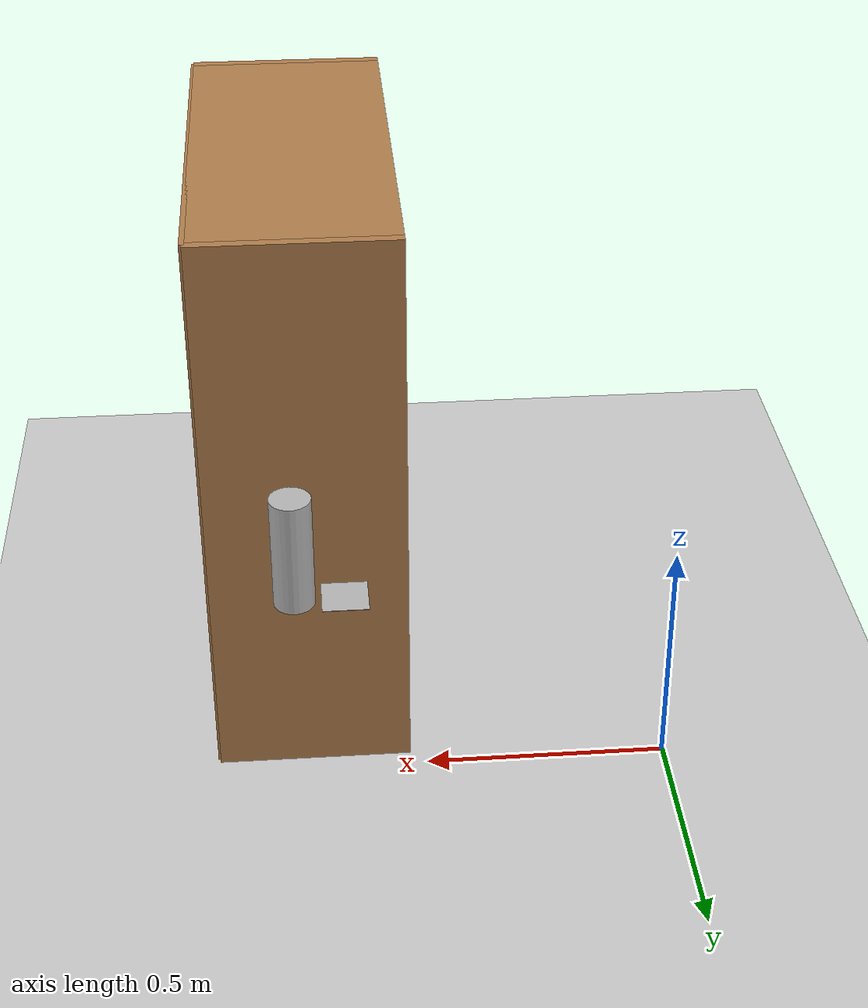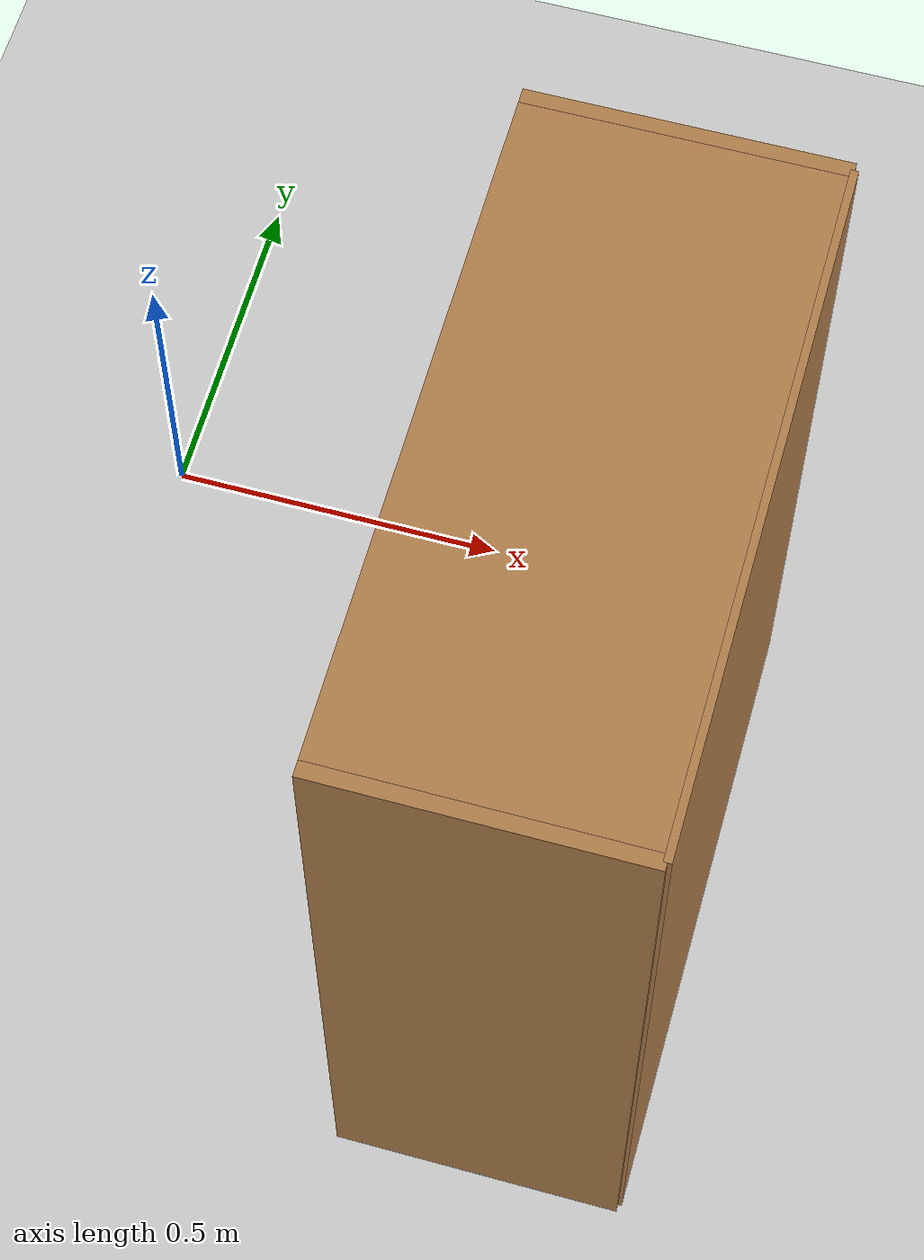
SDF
<sdf version="1.6">
 <world name="default">
  <physics name="default_physics" default="0" type="ode">
   <ode>
    <solver>
     <type>quick</type>
     <iters>20</iters>
     <sor>1</sor>
     <use_dynamic_moi_rescaling>0</use_dynamic_moi_rescaling>
    </solver>
    <constraints>
     <cfm>0</cfm>
     <erp>0.2</erp>
     <contact_max_correcting_vel>100</contact_max_correcting_vel>
     <contact_surface_layer>0</contact_surface_layer>
    </constraints>
   </ode>
   <real_time_update_rate>1000</real_time_update_rate>
   <max_step_size>0.001</max_step_size>
   <real_time_factor>1</real_time_factor>
  </physics>
  <light name="sun" type="directional">
   <pose>0 0 10 0 -0 0</pose>
   <diffuse>0.8 0.8 0.8 1</diffuse>
   <specular>0.2 0.2 0.2 1</specular>
   <attenuation>
    <range>1000</range>
    <constant>0.9</constant>
    <linear>0.01</linear>
    <quadratic>0.001</quadratic>
   </attenuation>
   <direction>-0.5 0.1 -0.9</direction>
  </light>
  <model name="ground_plane">
   <static>1</static>
   <link name="link">
    <collision name="collision">
     <geometry><plane><normal>0 0 1</normal><size>100 100</size></plane></geometry>
     <surface><friction><ode><mu>100</mu><mu2>50</mu2></ode></friction></surface>
    </collision>
    <visual name="visual">
     <cast_shadows>0</cast_shadows>
     <geometry><plane><normal>0 0 1</normal><size>100 100</size></plane></geometry>
     <material>
      <script><uri>file://media/materials/scripts/gazebo.material</uri><name>Gazebo/Grey</name></script>
     </material>
    </visual>
   </link>
  </model>
  <model name="aruco_marker_9cm_582">
   <static>1</static>
   <link name="marker">
    <inertial>
     <mass>0.1</mass>
     <inertia><ixx>0</ixx><ixy>0</ixy><ixz>0</ixz><iyy>0</iyy><iyz>0</iyz><izz>0</izz></inertia>
    </inertial>
    <visual name="visual">
     <geometry><box><size>0.09 0.09 0.001</size></box></geometry>
     <material>
      <script>
       <uri>model://aruco_marker_9cm_582/material/scripts</uri>
       <uri>model://aruco_marker_9cm_582/material/textures</uri>
       <name>Aruco/aruco_marker_9cm_582</name>
      </script>
     </material>
    </visual>
    <collision name="collision"><geometry><box><size>0.09 0.09 0.001</size></box></geometry></collision>
    <self_collide>1</self_collide>
   </link>
   <pose>0.666436 0.120053 0.529598 0 0 -1.57</pose>
  </model>
  <model name="aruco_marker_9cm_26">
   <static>1</static>
   <link name="marker">
    <inertial>
     <mass>0.1</mass>
     <inertia><ixx>0</ixx><ixy>0</ixy><ixz>0</ixz><iyy>0</iyy><iyz>0</iyz><izz>0</izz></inertia>
    </inertial>
    <visual name="visual">
     <geometry><box><size>0.09 0.09 0.001</size></box></geometry>
     <material>
      <script>
       <uri>model://aruco_marker_9cm_26/material/scripts</uri>
       <uri>model://aruco_marker_9cm_26/material/textures</uri>
       <name>Aruco/aruco_marker_9cm_26</name>
      </script>
     </material>
    </visual>
    <collision name="collision"><geometry><box><size>0.09 0.09 0.001</size></box></geometry></collision>
    <self_collide>1</self_collide>
   </link>
   <pose>0.6 -0.12 0.823091 0 0 -1.57</pose>
  </model>
  <model name="coke_can_slim">
   <static>0</static>
   <link name="link">
    <inertial>
     <mass>0.15</mass>
     <inertia><ixx>2079.98</ixx><ixy>0</ixy><ixz>0</ixz><iyy>2079.98</iyy><iyz>0</iyz><izz>419.21</izz></inertia>
    </inertial>
    <collision name="collision">
     <geometry><cylinder><radius>0.029</radius><length>0.15</length></cylinder></geometry>
    </collision>
    <visual name="visual">
     <geometry><cylinder><radius>0.029</radius><length>0.15</length></cylinder></geometry>
     <material>
      <script>
       <uri>model://coke_can_slim/material/scripts</uri>
       <uri>model://coke_can_slim/material/textures</uri>
       <name>Custom/coke_can_slim</name>
      </script>
     </material>
    </visual>
    <velocity_decay><linear>0</linear><angular>0</angular></velocity_decay>
   </link>
   <pose>0.684304 -0.119988 0.898591 -1.9e-05 -5e-06 -1.57</pose>
  </model>
  <gravity>0 0 -9.81</gravity>
  <magnetic_field>6e-06 2.3e-05 -4.2e-05</magnetic_field>
  <atmosphere type="adiabatic"/>
  <scene><ambient>0.4 0.4 0.4 1</ambient><background>0.7 0.7 0.7 1</background><shadows>1</shadows></scene>
  <spherical_coordinates>
   <surface_model>EARTH_WGS84</surface_model>
   <latitude_deg>0</latitude_deg>
   <longitude_deg>0</longitude_deg>
   <elevation>0</elevation>
   <heading_deg>0</heading_deg>
  </spherical_coordinates>
  <model name="bookshelf">
   <static>1</static>
   <link name="link">
    <inertial><mass>1</mass></inertial>
    <collision name="back">
     <pose>0 0.005 0.6 0 -0 0</pose>
     <geometry><box><size>0.9 0.01 1.2</size></box></geometry>
    </collision>
    <visual name="visual1">
     <pose>0 0.005 0.6 0 -0 0</pose>
     <geometry><box><size>0.9 0.01 1.2</size></box></geometry>
     <material>
      <script><uri>file://media/materials/scripts/gazebo.material</uri><name>Gazebo/Wood</name></script>
     </material>
    </visual>
    <collision name="left_side">
     <pose>0.45 -0.195 0.6 0 -0 0</pose>
     <geometry><box><size>0.02 0.4 1.2</size></box></geometry>
    </collision>
    <visual name="visual2">
     <pose>0.45 -0.195 0.6 0 -0 0</pose>
     <geometry><box><size>0.02 0.4 1.2</size></box></geometry>
     <material>
      <script><uri>file://media/materials/scripts/gazebo.material</uri><name>Gazebo/Wood</name></script>
     </material>
    </visual>
    <collision name="right_side">
     <pose>-0.45 -0.195 0.6 0 -0 0</pose>
     <geometry><box><size>0.02 0.4 1.2</size></box></geometry>
    </collision>
    <visual name="visual3">
     <pose>-0.45 -0.195 0.6 0 -0 0</pose>
     <geometry><box><size>0.02 0.4 1.2</size></box></geometry>
     <material>
      <script><uri>file://media/materials/scripts/gazebo.material</uri><name>Gazebo/Wood</name></script>
     </material>
    </visual>
    <collision name="bottom">
     <pose>0 -0.195 0.03 0 -0 0</pose>
     <geometry><box><size>0.88 0.4 0.06</size></box></geometry>
    </collision>
    <visual name="visual4">
     <pose>0 -0.195 0.03 0 -0 0</pose>
     <geometry><box><size>0.88 0.4 0.06</size></box></geometry>
     <material>
      <script><uri>file://media/materials/scripts/gazebo.material</uri><name>Gazebo/Wood</name></script>
     </material>
    </visual>
    <collision name="top">
     <pose>0 -0.195 1.19 0 -0 0</pose>
     <geometry><box><size>0.88 0.4 0.02</size></box></geometry>
    </collision>
    <visual name="visual5">
     <pose>0 -0.195 1.19 0 -0 0</pose>
     <geometry><box><size>0.88 0.4 0.02</size></box></geometry>
     <material>
      <script><uri>file://media/materials/scripts/gazebo.material</uri><name>Gazebo/Wood</name></script>
     </material>
    </visual>
    <collision name="low_shelf">
     <pose>0 -0.195 0.43 0 -0 0</pose>
     <geometry><box><size>0.88 0.4 0.02</size></box></geometry>
    </collision>
    <visual name="visual6">
     <pose>0 -0.195 0.43 0 -0 0</pose>
     <geometry><box><size>0.88 0.4 0.02</size></box></geometry>
     <material>
      <script><uri>file://media/materials/scripts/gazebo.material</uri><name>Gazebo/Wood</name></script>
     </material>
    </visual>
    <collision name="high_shelf">
     <pose>0 -0.195 0.8 0 -0 0</pose>
     <geometry><box><size>0.88 0.4 0.02</size></box></geometry>
    </collision>
    <visual name="visual7">
     <pose>0 -0.195 0.8 0 -0 0</pose>
     <geometry><box><size>0.88 0.4 0.02</size></box></geometry>
     <material>
      <script><uri>file://media/materials/scripts/gazebo.material</uri><name>Gazebo/Wood</name></script>
     </material>
    </visual>
    <velocity_decay><linear>0</linear><angular>0</angular></velocity_decay>
   </link>
   <pose>0.929703 -0.492298 0 0 0 -1.5708</pose>
  </model>
  <model name="pringles2">
   <static>0</static>
   <link name="link">
    <inertial>
     <mass>0.25</mass>
     <inertia><ixx>0</ixx><ixy>0</ixy><ixz>0</ixz><iyy>0</iyy><iyz>0</iyz><izz>0</izz></inertia>
    </inertial>
    <collision name="collision">
     <pose>0 0 0.12 -3.14159 -0 0</pose>
     <geometry><cylinder><radius>0.04</radius><length>0.235</length></cylinder></geometry>
    </collision>
    <visual name="visual">
     <pose>0 0 0.12 -3.14159 -0 0</pose>
     <geometry><cylinder><radius>0.04</radius><length>0.235</length></cylinder></geometry>
     <material>
      <script>
       <uri>model://pringles2/material/scripts</uri>
       <uri>model://pringles2/material/textures</uri>
       <name>Custom/pringles2</name>
      </script>
     </material>
    </visual>
    <velocity_decay><linear>0</linear><angular>0</angular></velocity_decay>
   </link>
   <pose>0.762661 0.120008 0.519696 0 -0 0</pose>
  </model>
 </world>
</sdf>
